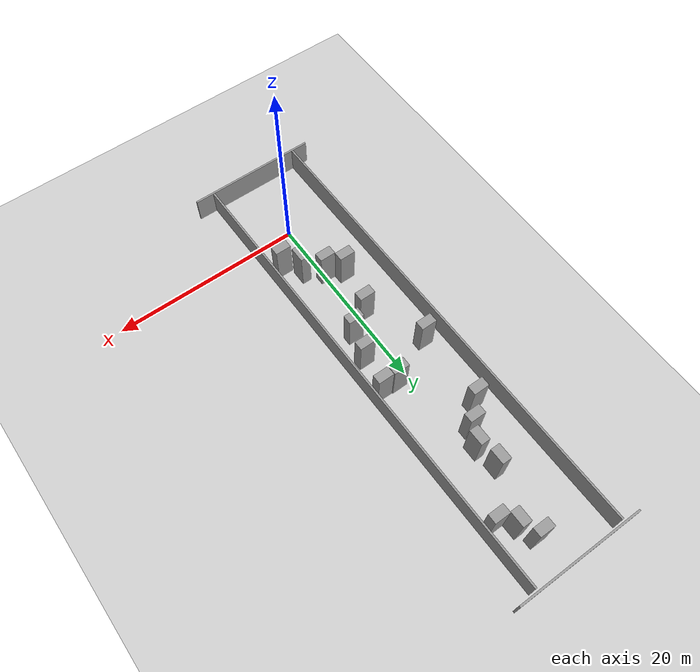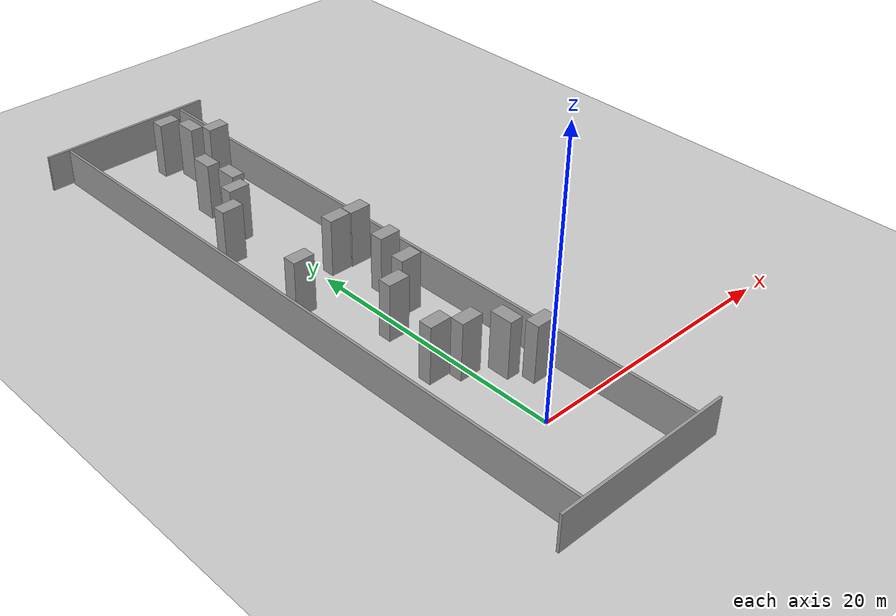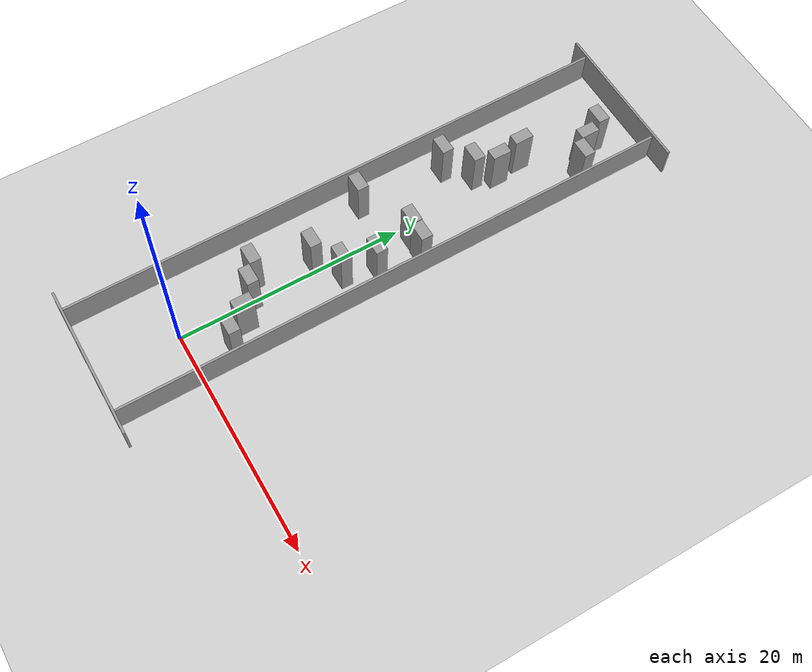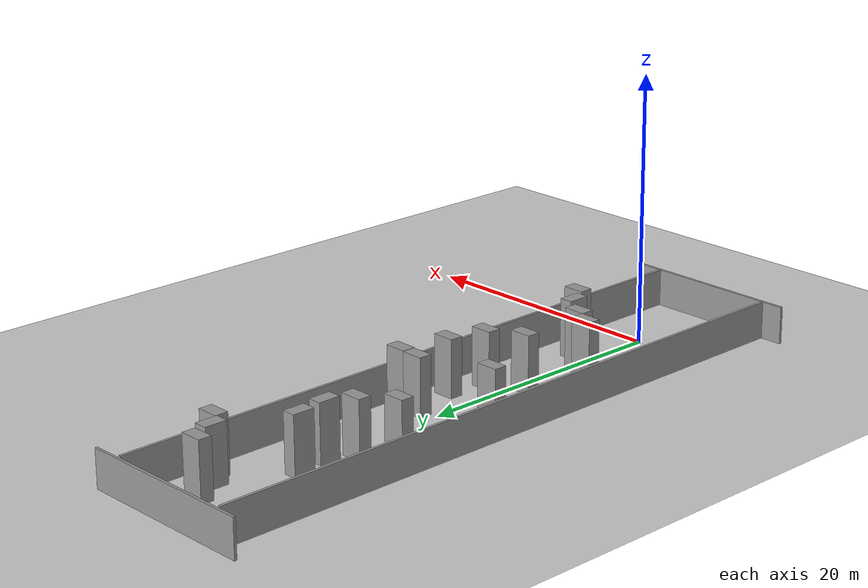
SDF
<sdf version="1.7">
 <world name="default">
  <light name="sun" type="directional">
   <pose>0 0 10 0 -0 0</pose>
   <diffuse>0.8 0.8 0.8 1</diffuse>
   <specular>0.2 0.2 0.2 1</specular>
   <attenuation>
    <range>1000</range>
    <constant>0.9</constant>
    <linear>0.01</linear>
    <quadratic>0.001</quadratic>
   </attenuation>
   <direction>-0.5 0.1 -0.9</direction>
   <spot><inner_angle>0</inner_angle><outer_angle>0</outer_angle><falloff>0</falloff></spot>
  </light>
  <model name="ground_plane">
   <static>1</static>
   <link name="link">
    <collision name="collision">
     <geometry><plane><normal>0 0 1</normal><size>100 100</size></plane></geometry>
     <surface><friction><ode><mu>100</mu><mu2>50</mu2></ode></friction></surface>
    </collision>
    <visual name="visual">
     <cast_shadows>0</cast_shadows>
     <geometry><plane><normal>0 0 1</normal><size>100 100</size></plane></geometry>
     <material>
      <script><uri>file://media/materials/scripts/gazebo.material</uri><name>Gazebo/Grey</name></script>
     </material>
    </visual>
   </link>
  </model>
  <gravity>0 0 -9.8</gravity>
  <magnetic_field>6e-06 2.3e-05 -4.2e-05</magnetic_field>
  <atmosphere type="adiabatic"/>
  <physics type="ode">
   <max_step_size>0.001</max_step_size>
   <real_time_factor>1</real_time_factor>
   <real_time_update_rate>1000</real_time_update_rate>
  </physics>
  <scene><ambient>0.4 0.4 0.4 1</ambient><background>0.7 0.7 0.7 1</background><shadows>1</shadows></scene>
  <audio><device>default</device></audio>
  <spherical_coordinates>
   <surface_model>EARTH_WGS84</surface_model>
   <latitude_deg>0</latitude_deg>
   <longitude_deg>0</longitude_deg>
   <elevation>0</elevation>
   <heading_deg>0</heading_deg>
  </spherical_coordinates>
  <model name="A_sajat_akadaly">
   <link name="link">
    <inertial>
     <mass>7.20795</mass>
     <inertia><ixx>12.896</ixx><ixy>0</ixy><ixz>0</ixz><iyy>11.827</iyy><iyz>0</iyz><izz>2.27029</izz></inertia>
    </inertial>
    <visual name="visual">
     <geometry><box><size>1 1.66723 4.32319</size></box></geometry>
     <material>
      <script><name>Gazebo/Grey</name><uri>file://media/materials/scripts/gazebo.material</uri></script>
      <shader type="pixel"><normal_map>__default__</normal_map></shader>
      <ambient>0.3 0.3 0.3 1</ambient>
      <diffuse>0.7 0.7 0.7 1</diffuse>
      <specular>0.01 0.01 0.01 1</specular>
      <emissive>0 0 0 1</emissive>
     </material>
    </visual>
    <collision name="collision">
     <geometry><box><size>1 1.66723 4.32319</size></box></geometry>
     <surface>
      <friction>
       <ode><mu>1</mu><mu2>1</mu2><fdir1>0 0 0</fdir1><slip1>0</slip1><slip2>0</slip2></ode>
       <torsional>
        <coefficient>1</coefficient>
        <patch_radius>0</patch_radius>
        <surface_radius>0</surface_radius>
        <use_patch_radius>1</use_patch_radius>
        <ode><slip>0</slip></ode>
       </torsional>
      </friction>
      <bounce><restitution_coefficient>0</restitution_coefficient><threshold>1e+06</threshold></bounce>
      <contact>
       <collide_without_contact>0</collide_without_contact>
       <collide_without_contact_bitmask>1</collide_without_contact_bitmask>
       <collide_bitmask>1</collide_bitmask>
       <ode>
        <soft_cfm>0</soft_cfm>
        <soft_erp>0.2</soft_erp>
        <kp>1e+13</kp>
        <kd>1</kd>
        <max_vel>0.01</max_vel>
        <min_depth>0</min_depth>
       </ode>
       <bullet>
        <split_impulse>1</split_impulse>
        <split_impulse_penetration_threshold>-0.01</split_impulse_penetration_threshold>
        <soft_cfm>0</soft_cfm>
        <soft_erp>0.2</soft_erp>
        <kp>1e+13</kp>
        <kd>1</kd>
       </bullet>
      </contact>
     </surface>
    </collision>
   </link>
   <static>0</static>
   <pose>-1.79115 7.65078 2.16159 0 -0 1.57</pose>
  </model>
  <model name="A_sajat_grey_wall_long">
   <link name="link">
    <pose>0 0 1.4 0 -0 0</pose>
    <inertial>
     <inertia><ixx>0</ixx><ixy>0</ixy><ixz>0</ixz><iyy>0</iyy><iyz>0</iyz><izz>0</izz></inertia>
     <mass>0</mass>
    </inertial>
    <visual name="visual">
     <cast_shadows>0</cast_shadows>
     <geometry><box><size>49.8516 0.2 2.8</size></box></geometry>
     <material>
      <script>
       <uri>model://grey_wall/materials/scripts</uri>
       <uri>model://grey_wall/materials/textures</uri>
       <name>vrc/grey_wall</name>
      </script>
      <shader type="pixel"/>
     </material>
    </visual>
    <collision name="collision">
     <geometry><box><size>49.8516 0.2 2.8</size></box></geometry>
     <surface>
      <friction>
       <ode><mu>1</mu><mu2>1</mu2><fdir1>0 0 0</fdir1><slip1>0</slip1><slip2>0</slip2></ode>
       <torsional>
        <coefficient>1</coefficient>
        <patch_radius>0</patch_radius>
        <surface_radius>0</surface_radius>
        <use_patch_radius>1</use_patch_radius>
        <ode><slip>0</slip></ode>
       </torsional>
      </friction>
      <bounce><restitution_coefficient>0</restitution_coefficient><threshold>1e+06</threshold></bounce>
      <contact>
       <collide_without_contact>0</collide_without_contact>
       <collide_without_contact_bitmask>1</collide_without_contact_bitmask>
       <collide_bitmask>1</collide_bitmask>
       <ode>
        <soft_cfm>0</soft_cfm>
        <soft_erp>0.2</soft_erp>
        <kp>1e+13</kp>
        <kd>1</kd>
        <max_vel>0.01</max_vel>
        <min_depth>0</min_depth>
       </ode>
       <bullet>
        <split_impulse>1</split_impulse>
        <split_impulse_penetration_threshold>-0.01</split_impulse_penetration_threshold>
        <soft_cfm>0</soft_cfm>
        <soft_erp>0.2</soft_erp>
        <kp>1e+13</kp>
        <kd>1</kd>
       </bullet>
      </contact>
     </surface>
    </collision>
   </link>
   <static>1</static>
   <pose>-5.62876 17.7777 0 0 0 -1.56286</pose>
  </model>
  <model name="A_sajat_grey_wall_long_clone">
   <link name="link">
    <pose>0 0 1.4 0 -0 0</pose>
    <inertial>
     <inertia><ixx>0</ixx><ixy>0</ixy><ixz>0</ixz><iyy>0</iyy><iyz>0</iyz><izz>0</izz></inertia>
     <mass>0</mass>
    </inertial>
    <visual name="visual">
     <cast_shadows>0</cast_shadows>
     <geometry><box><size>49.8516 0.2 2.8</size></box></geometry>
     <material>
      <script>
       <uri>model://grey_wall/materials/scripts</uri>
       <uri>model://grey_wall/materials/textures</uri>
       <name>vrc/grey_wall</name>
      </script>
      <shader type="pixel"/>
     </material>
    </visual>
    <collision name="collision">
     <geometry><box><size>49.8516 0.2 2.8</size></box></geometry>
     <surface>
      <friction>
       <ode><mu>1</mu><mu2>1</mu2><fdir1>0 0 0</fdir1><slip1>0</slip1><slip2>0</slip2></ode>
       <torsional>
        <coefficient>1</coefficient>
        <patch_radius>0</patch_radius>
        <surface_radius>0</surface_radius>
        <use_patch_radius>1</use_patch_radius>
        <ode><slip>0</slip></ode>
       </torsional>
      </friction>
      <bounce><restitution_coefficient>0</restitution_coefficient><threshold>1e+06</threshold></bounce>
      <contact>
       <collide_without_contact>0</collide_without_contact>
       <collide_without_contact_bitmask>1</collide_without_contact_bitmask>
       <collide_bitmask>1</collide_bitmask>
       <ode>
        <soft_cfm>0</soft_cfm>
        <soft_erp>0.2</soft_erp>
        <kp>1e+13</kp>
        <kd>1</kd>
        <max_vel>0.01</max_vel>
        <min_depth>0</min_depth>
       </ode>
       <bullet>
        <split_impulse>1</split_impulse>
        <split_impulse_penetration_threshold>-0.01</split_impulse_penetration_threshold>
        <soft_cfm>0</soft_cfm>
        <soft_erp>0.2</soft_erp>
        <kp>1e+13</kp>
        <kd>1</kd>
       </bullet>
      </contact>
     </surface>
    </collision>
   </link>
   <static>1</static>
   <pose>4.25641 17.7602 0 0 0 -1.56286</pose>
  </model>
  <model name="A_sajat_grey_wall">
   <link name="link">
    <pose>0 0 1.4 0 -0 0</pose>
    <inertial>
     <inertia><ixx>0</ixx><ixy>0</ixy><ixz>0</ixz><iyy>0</iyy><iyz>0</iyz><izz>0</izz></inertia>
     <mass>0</mass>
    </inertial>
    <visual name="visual">
     <cast_shadows>0</cast_shadows>
     <geometry><box><size>13.6967 0.2 2.8</size></box></geometry>
     <material>
      <script>
       <uri>model://grey_wall/materials/scripts</uri>
       <uri>model://grey_wall/materials/textures</uri>
       <name>vrc/grey_wall</name>
      </script>
      <shader type="pixel"/>
     </material>
    </visual>
    <collision name="collision">
     <geometry><box><size>13.6967 0.2 2.8</size></box></geometry>
     <surface>
      <friction>
       <ode><mu>1</mu><mu2>1</mu2><fdir1>0 0 0</fdir1><slip1>0</slip1><slip2>0</slip2></ode>
       <torsional>
        <coefficient>1</coefficient>
        <patch_radius>0</patch_radius>
        <surface_radius>0</surface_radius>
        <use_patch_radius>1</use_patch_radius>
        <ode><slip>0</slip></ode>
       </torsional>
      </friction>
      <bounce><restitution_coefficient>0</restitution_coefficient><threshold>1e+06</threshold></bounce>
      <contact>
       <collide_without_contact>0</collide_without_contact>
       <collide_without_contact_bitmask>1</collide_without_contact_bitmask>
       <collide_bitmask>1</collide_bitmask>
       <ode>
        <soft_cfm>0</soft_cfm>
        <soft_erp>0.2</soft_erp>
        <kp>1e+13</kp>
        <kd>1</kd>
        <max_vel>0.01</max_vel>
        <min_depth>0</min_depth>
       </ode>
       <bullet>
        <split_impulse>1</split_impulse>
        <split_impulse_penetration_threshold>-0.01</split_impulse_penetration_threshold>
        <soft_cfm>0</soft_cfm>
        <soft_erp>0.2</soft_erp>
        <kp>1e+13</kp>
        <kd>1</kd>
       </bullet>
      </contact>
     </surface>
    </collision>
   </link>
   <static>1</static>
   <pose>-0.342591 -7.24357 0 0 -0 0</pose>
  </model>
  <model name="A_sajat_akadaly_clone">
   <link name="link">
    <inertial>
     <mass>7.20795</mass>
     <inertia><ixx>12.896</ixx><ixy>0</ixy><ixz>0</ixz><iyy>11.827</iyy><iyz>0</iyz><izz>2.27029</izz></inertia>
    </inertial>
    <visual name="visual">
     <geometry><box><size>1 1.66723 4.32319</size></box></geometry>
     <material>
      <script><name>Gazebo/Grey</name><uri>file://media/materials/scripts/gazebo.material</uri></script>
      <shader type="pixel"><normal_map>__default__</normal_map></shader>
      <ambient>0.3 0.3 0.3 1</ambient>
      <diffuse>0.7 0.7 0.7 1</diffuse>
      <specular>0.01 0.01 0.01 1</specular>
      <emissive>0 0 0 1</emissive>
     </material>
    </visual>
    <collision name="collision">
     <geometry><box><size>1 1.66723 4.32319</size></box></geometry>
     <surface>
      <friction>
       <ode><mu>1</mu><mu2>1</mu2><fdir1>0 0 0</fdir1><slip1>0</slip1><slip2>0</slip2></ode>
       <torsional>
        <coefficient>1</coefficient>
        <patch_radius>0</patch_radius>
        <surface_radius>0</surface_radius>
        <use_patch_radius>1</use_patch_radius>
        <ode><slip>0</slip></ode>
       </torsional>
      </friction>
      <bounce><restitution_coefficient>0</restitution_coefficient><threshold>1e+06</threshold></bounce>
      <contact>
       <collide_without_contact>0</collide_without_contact>
       <collide_without_contact_bitmask>1</collide_without_contact_bitmask>
       <collide_bitmask>1</collide_bitmask>
       <ode>
        <soft_cfm>0</soft_cfm>
        <soft_erp>0.2</soft_erp>
        <kp>1e+13</kp>
        <kd>1</kd>
        <max_vel>0.01</max_vel>
        <min_depth>0</min_depth>
       </ode>
       <bullet>
        <split_impulse>1</split_impulse>
        <split_impulse_penetration_threshold>-0.01</split_impulse_penetration_threshold>
        <soft_cfm>0</soft_cfm>
        <soft_erp>0.2</soft_erp>
        <kp>1e+13</kp>
        <kd>1</kd>
       </bullet>
      </contact>
     </surface>
    </collision>
   </link>
   <static>0</static>
   <pose>1.72775 5.12744 2.1616 -1e-06 0 -0.00025</pose>
  </model>
  <model name="A_sajat_akadaly_clone_0">
   <link name="link">
    <inertial>
     <mass>7.20795</mass>
     <inertia><ixx>12.896</ixx><ixy>0</ixy><ixz>0</ixz><iyy>11.827</iyy><iyz>0</iyz><izz>2.27029</izz></inertia>
    </inertial>
    <visual name="visual">
     <geometry><box><size>1 1.66723 4.32319</size></box></geometry>
     <material>
      <script><name>Gazebo/Grey</name><uri>file://media/materials/scripts/gazebo.material</uri></script>
      <shader type="pixel"><normal_map>__default__</normal_map></shader>
      <ambient>0.3 0.3 0.3 1</ambient>
      <diffuse>0.7 0.7 0.7 1</diffuse>
      <specular>0.01 0.01 0.01 1</specular>
      <emissive>0 0 0 1</emissive>
     </material>
    </visual>
    <collision name="collision">
     <geometry><box><size>1 1.66723 4.32319</size></box></geometry>
     <surface>
      <friction>
       <ode><mu>1</mu><mu2>1</mu2><fdir1>0 0 0</fdir1><slip1>0</slip1><slip2>0</slip2></ode>
       <torsional>
        <coefficient>1</coefficient>
        <patch_radius>0</patch_radius>
        <surface_radius>0</surface_radius>
        <use_patch_radius>1</use_patch_radius>
        <ode><slip>0</slip></ode>
       </torsional>
      </friction>
      <bounce><restitution_coefficient>0</restitution_coefficient><threshold>1e+06</threshold></bounce>
      <contact>
       <collide_without_contact>0</collide_without_contact>
       <collide_without_contact_bitmask>1</collide_without_contact_bitmask>
       <collide_bitmask>1</collide_bitmask>
       <ode>
        <soft_cfm>0</soft_cfm>
        <soft_erp>0.2</soft_erp>
        <kp>1e+13</kp>
        <kd>1</kd>
        <max_vel>0.01</max_vel>
        <min_depth>0</min_depth>
       </ode>
       <bullet>
        <split_impulse>1</split_impulse>
        <split_impulse_penetration_threshold>-0.01</split_impulse_penetration_threshold>
        <soft_cfm>0</soft_cfm>
        <soft_erp>0.2</soft_erp>
        <kp>1e+13</kp>
        <kd>1</kd>
       </bullet>
      </contact>
     </surface>
    </collision>
   </link>
   <static>0</static>
   <pose>-0.691105 12.483 2.16159 0 -0 1.57</pose>
  </model>
  <model name="A_sajat_akadaly_clone_1">
   <link name="link">
    <inertial>
     <mass>7.20795</mass>
     <inertia><ixx>12.896</ixx><ixy>0</ixy><ixz>0</ixz><iyy>11.827</iyy><iyz>0</iyz><izz>2.27029</izz></inertia>
    </inertial>
    <visual name="visual">
     <geometry><box><size>1 1.66723 4.32319</size></box></geometry>
     <material>
      <script><name>Gazebo/Grey</name><uri>file://media/materials/scripts/gazebo.material</uri></script>
      <shader type="pixel"><normal_map>__default__</normal_map></shader>
      <ambient>0.3 0.3 0.3 1</ambient>
      <diffuse>0.7 0.7 0.7 1</diffuse>
      <specular>0.01 0.01 0.01 1</specular>
      <emissive>0 0 0 1</emissive>
     </material>
    </visual>
    <collision name="collision">
     <geometry><box><size>1 1.66723 4.32319</size></box></geometry>
     <surface>
      <friction>
       <ode><mu>1</mu><mu2>1</mu2><fdir1>0 0 0</fdir1><slip1>0</slip1><slip2>0</slip2></ode>
       <torsional>
        <coefficient>1</coefficient>
        <patch_radius>0</patch_radius>
        <surface_radius>0</surface_radius>
        <use_patch_radius>1</use_patch_radius>
        <ode><slip>0</slip></ode>
       </torsional>
      </friction>
      <bounce><restitution_coefficient>0</restitution_coefficient><threshold>1e+06</threshold></bounce>
      <contact>
       <collide_without_contact>0</collide_without_contact>
       <collide_without_contact_bitmask>1</collide_without_contact_bitmask>
       <collide_bitmask>1</collide_bitmask>
       <ode>
        <soft_cfm>0</soft_cfm>
        <soft_erp>0.2</soft_erp>
        <kp>1e+13</kp>
        <kd>1</kd>
        <max_vel>0.01</max_vel>
        <min_depth>0</min_depth>
       </ode>
       <bullet>
        <split_impulse>1</split_impulse>
        <split_impulse_penetration_threshold>-0.01</split_impulse_penetration_threshold>
        <soft_cfm>0</soft_cfm>
        <soft_erp>0.2</soft_erp>
        <kp>1e+13</kp>
        <kd>1</kd>
       </bullet>
      </contact>
     </surface>
    </collision>
   </link>
   <static>0</static>
   <pose>2.42408 16.7386 2.16159 0 -0 1.57</pose>
  </model>
  <model name="A_sajat_akadaly_clone_2">
   <link name="link">
    <inertial>
     <mass>7.20795</mass>
     <inertia><ixx>12.896</ixx><ixy>0</ixy><ixz>0</ixz><iyy>11.827</iyy><iyz>0</iyz><izz>2.27029</izz></inertia>
    </inertial>
    <visual name="visual">
     <geometry><box><size>1 1.66723 4.32319</size></box></geometry>
     <material>
      <script><name>Gazebo/Grey</name><uri>file://media/materials/scripts/gazebo.material</uri></script>
      <shader type="pixel"><normal_map>__default__</normal_map></shader>
      <ambient>0.3 0.3 0.3 1</ambient>
      <diffuse>0.7 0.7 0.7 1</diffuse>
      <specular>0.01 0.01 0.01 1</specular>
      <emissive>0 0 0 1</emissive>
     </material>
    </visual>
    <collision name="collision">
     <geometry><box><size>1 1.66723 4.32319</size></box></geometry>
     <surface>
      <friction>
       <ode><mu>1</mu><mu2>1</mu2><fdir1>0 0 0</fdir1><slip1>0</slip1><slip2>0</slip2></ode>
       <torsional>
        <coefficient>1</coefficient>
        <patch_radius>0</patch_radius>
        <surface_radius>0</surface_radius>
        <use_patch_radius>1</use_patch_radius>
        <ode><slip>0</slip></ode>
       </torsional>
      </friction>
      <bounce><restitution_coefficient>0</restitution_coefficient><threshold>1e+06</threshold></bounce>
      <contact>
       <collide_without_contact>0</collide_without_contact>
       <collide_without_contact_bitmask>1</collide_without_contact_bitmask>
       <collide_bitmask>1</collide_bitmask>
       <ode>
        <soft_cfm>0</soft_cfm>
        <soft_erp>0.2</soft_erp>
        <kp>1e+13</kp>
        <kd>1</kd>
        <max_vel>0.01</max_vel>
        <min_depth>0</min_depth>
       </ode>
       <bullet>
        <split_impulse>1</split_impulse>
        <split_impulse_penetration_threshold>-0.01</split_impulse_penetration_threshold>
        <soft_cfm>0</soft_cfm>
        <soft_erp>0.2</soft_erp>
        <kp>1e+13</kp>
        <kd>1</kd>
       </bullet>
      </contact>
     </surface>
    </collision>
   </link>
   <static>0</static>
   <pose>-3.50615 18.3969 2.16159 0 -0 1.57</pose>
  </model>
  <model name="A_sajat_akadaly_clone_3">
   <link name="link">
    <inertial>
     <mass>7.20795</mass>
     <inertia><ixx>12.896</ixx><ixy>0</ixy><ixz>0</ixz><iyy>11.827</iyy><iyz>0</iyz><izz>2.27029</izz></inertia>
    </inertial>
    <visual name="visual">
     <geometry><box><size>1 1.66723 4.32319</size></box></geometry>
     <material>
      <script><name>Gazebo/Grey</name><uri>file://media/materials/scripts/gazebo.material</uri></script>
      <shader type="pixel"><normal_map>__default__</normal_map></shader>
      <ambient>0.3 0.3 0.3 1</ambient>
      <diffuse>0.7 0.7 0.7 1</diffuse>
      <specular>0.01 0.01 0.01 1</specular>
      <emissive>0 0 0 1</emissive>
     </material>
    </visual>
    <collision name="collision">
     <geometry><box><size>1 1.66723 4.32319</size></box></geometry>
     <surface>
      <friction>
       <ode><mu>1</mu><mu2>1</mu2><fdir1>0 0 0</fdir1><slip1>0</slip1><slip2>0</slip2></ode>
       <torsional>
        <coefficient>1</coefficient>
        <patch_radius>0</patch_radius>
        <surface_radius>0</surface_radius>
        <use_patch_radius>1</use_patch_radius>
        <ode><slip>0</slip></ode>
       </torsional>
      </friction>
      <bounce><restitution_coefficient>0</restitution_coefficient><threshold>1e+06</threshold></bounce>
      <contact>
       <collide_without_contact>0</collide_without_contact>
       <collide_without_contact_bitmask>1</collide_without_contact_bitmask>
       <collide_bitmask>1</collide_bitmask>
       <ode>
        <soft_cfm>0</soft_cfm>
        <soft_erp>0.2</soft_erp>
        <kp>1e+13</kp>
        <kd>1</kd>
        <max_vel>0.01</max_vel>
        <min_depth>0</min_depth>
       </ode>
       <bullet>
        <split_impulse>1</split_impulse>
        <split_impulse_penetration_threshold>-0.01</split_impulse_penetration_threshold>
        <soft_cfm>0</soft_cfm>
        <soft_erp>0.2</soft_erp>
        <kp>1e+13</kp>
        <kd>1</kd>
       </bullet>
      </contact>
     </surface>
    </collision>
   </link>
   <static>0</static>
   <pose>3.09581 20.4869 2.16159 0 -0 1.57</pose>
  </model>
  <model name="A_sajat_akadaly_clone_4">
   <link name="link">
    <inertial>
     <mass>7.20795</mass>
     <inertia><ixx>12.896</ixx><ixy>0</ixy><ixz>0</ixz><iyy>11.827</iyy><iyz>0</iyz><izz>2.27029</izz></inertia>
    </inertial>
    <visual name="visual">
     <geometry><box><size>1 1.66723 4.32319</size></box></geometry>
     <material>
      <script><name>Gazebo/Grey</name><uri>file://media/materials/scripts/gazebo.material</uri></script>
      <shader type="pixel"><normal_map>__default__</normal_map></shader>
      <ambient>0.3 0.3 0.3 1</ambient>
      <diffuse>0.7 0.7 0.7 1</diffuse>
      <specular>0.01 0.01 0.01 1</specular>
      <emissive>0 0 0 1</emissive>
     </material>
    </visual>
    <collision name="collision">
     <geometry><box><size>1 1.66723 4.32319</size></box></geometry>
     <surface>
      <friction>
       <ode><mu>1</mu><mu2>1</mu2><fdir1>0 0 0</fdir1><slip1>0</slip1><slip2>0</slip2></ode>
       <torsional>
        <coefficient>1</coefficient>
        <patch_radius>0</patch_radius>
        <surface_radius>0</surface_radius>
        <use_patch_radius>1</use_patch_radius>
        <ode><slip>0</slip></ode>
       </torsional>
      </friction>
      <bounce><restitution_coefficient>0</restitution_coefficient><threshold>1e+06</threshold></bounce>
      <contact>
       <collide_without_contact>0</collide_without_contact>
       <collide_without_contact_bitmask>1</collide_without_contact_bitmask>
       <collide_bitmask>1</collide_bitmask>
       <ode>
        <soft_cfm>0</soft_cfm>
        <soft_erp>0.2</soft_erp>
        <kp>1e+13</kp>
        <kd>1</kd>
        <max_vel>0.01</max_vel>
        <min_depth>0</min_depth>
       </ode>
       <bullet>
        <split_impulse>1</split_impulse>
        <split_impulse_penetration_threshold>-0.01</split_impulse_penetration_threshold>
        <soft_cfm>0</soft_cfm>
        <soft_erp>0.2</soft_erp>
        <kp>1e+13</kp>
        <kd>1</kd>
       </bullet>
      </contact>
     </surface>
    </collision>
   </link>
   <static>0</static>
   <pose>-3.21723 26.3393 2.16159 0 -0 1.57</pose>
  </model>
  <model name="A_sajat_akadaly_clone_3_clone">
   <link name="link">
    <inertial>
     <mass>7.20795</mass>
     <inertia><ixx>12.896</ixx><ixy>0</ixy><ixz>0</ixz><iyy>11.827</iyy><iyz>0</iyz><izz>2.27029</izz></inertia>
    </inertial>
    <visual name="visual">
     <geometry><box><size>1 1.66723 4.32319</size></box></geometry>
     <material>
      <script><name>Gazebo/Grey</name><uri>file://media/materials/scripts/gazebo.material</uri></script>
      <shader type="pixel"><normal_map>__default__</normal_map></shader>
      <ambient>0.3 0.3 0.3 1</ambient>
      <diffuse>0.7 0.7 0.7 1</diffuse>
      <specular>0.01 0.01 0.01 1</specular>
      <emissive>0 0 0 1</emissive>
     </material>
    </visual>
    <collision name="collision">
     <geometry><box><size>1 1.66723 4.32319</size></box></geometry>
     <surface>
      <friction>
       <ode><mu>1</mu><mu2>1</mu2><fdir1>0 0 0</fdir1><slip1>0</slip1><slip2>0</slip2></ode>
       <torsional>
        <coefficient>1</coefficient>
        <patch_radius>0</patch_radius>
        <surface_radius>0</surface_radius>
        <use_patch_radius>1</use_patch_radius>
        <ode><slip>0</slip></ode>
       </torsional>
      </friction>
      <bounce><restitution_coefficient>0</restitution_coefficient><threshold>1e+06</threshold></bounce>
      <contact>
       <collide_without_contact>0</collide_without_contact>
       <collide_without_contact_bitmask>1</collide_without_contact_bitmask>
       <collide_bitmask>1</collide_bitmask>
       <ode>
        <soft_cfm>0</soft_cfm>
        <soft_erp>0.2</soft_erp>
        <kp>1e+13</kp>
        <kd>1</kd>
        <max_vel>0.01</max_vel>
        <min_depth>0</min_depth>
       </ode>
       <bullet>
        <split_impulse>1</split_impulse>
        <split_impulse_penetration_threshold>-0.01</split_impulse_penetration_threshold>
        <soft_cfm>0</soft_cfm>
        <soft_erp>0.2</soft_erp>
        <kp>1e+13</kp>
        <kd>1</kd>
       </bullet>
      </contact>
     </surface>
    </collision>
   </link>
   <static>0</static>
   <pose>1.38754 20.5635 2.16159 0 -0 1.57</pose>
  </model>
  <model name="A_sajat_akadaly_clone_3_clone_0">
   <link name="link">
    <inertial>
     <mass>7.20795</mass>
     <inertia><ixx>12.896</ixx><ixy>0</ixy><ixz>0</ixz><iyy>11.827</iyy><iyz>0</iyz><izz>2.27029</izz></inertia>
    </inertial>
    <visual name="visual">
     <geometry><box><size>1 1.66723 4.32319</size></box></geometry>
     <material>
      <script><name>Gazebo/Grey</name><uri>file://media/materials/scripts/gazebo.material</uri></script>
      <shader type="pixel"><normal_map>__default__</normal_map></shader>
      <ambient>0.3 0.3 0.3 1</ambient>
      <diffuse>0.7 0.7 0.7 1</diffuse>
      <specular>0.01 0.01 0.01 1</specular>
      <emissive>0 0 0 1</emissive>
     </material>
    </visual>
    <collision name="collision">
     <geometry><box><size>1 1.66723 4.32319</size></box></geometry>
     <surface>
      <friction>
       <ode><mu>1</mu><mu2>1</mu2><fdir1>0 0 0</fdir1><slip1>0</slip1><slip2>0</slip2></ode>
       <torsional>
        <coefficient>1</coefficient>
        <patch_radius>0</patch_radius>
        <surface_radius>0</surface_radius>
        <use_patch_radius>1</use_patch_radius>
        <ode><slip>0</slip></ode>
       </torsional>
      </friction>
      <bounce><restitution_coefficient>0</restitution_coefficient><threshold>1e+06</threshold></bounce>
      <contact>
       <collide_without_contact>0</collide_without_contact>
       <collide_without_contact_bitmask>1</collide_without_contact_bitmask>
       <collide_bitmask>1</collide_bitmask>
       <ode>
        <soft_cfm>0</soft_cfm>
        <soft_erp>0.2</soft_erp>
        <kp>1e+13</kp>
        <kd>1</kd>
        <max_vel>0.01</max_vel>
        <min_depth>0</min_depth>
       </ode>
       <bullet>
        <split_impulse>1</split_impulse>
        <split_impulse_penetration_threshold>-0.01</split_impulse_penetration_threshold>
        <soft_cfm>0</soft_cfm>
        <soft_erp>0.2</soft_erp>
        <kp>1e+13</kp>
        <kd>1</kd>
       </bullet>
      </contact>
     </surface>
    </collision>
   </link>
   <static>0</static>
   <pose>1.66851 13.9213 2.16159 0 -0 1.57</pose>
  </model>
  <model name="A_sajat_akadaly_clone_3_clone_1">
   <link name="link">
    <inertial>
     <mass>7.20795</mass>
     <inertia><ixx>12.896</ixx><ixy>0</ixy><ixz>0</ixz><iyy>11.827</iyy><iyz>0</iyz><izz>2.27029</izz></inertia>
    </inertial>
    <visual name="visual">
     <geometry><box><size>1 1.66723 4.32319</size></box></geometry>
     <material>
      <script><name>Gazebo/Grey</name><uri>file://media/materials/scripts/gazebo.material</uri></script>
      <shader type="pixel"><normal_map>__default__</normal_map></shader>
      <ambient>0.3 0.3 0.3 1</ambient>
      <diffuse>0.7 0.7 0.7 1</diffuse>
      <specular>0.01 0.01 0.01 1</specular>
      <emissive>0 0 0 1</emissive>
     </material>
    </visual>
    <collision name="collision">
     <geometry><box><size>1 1.66723 4.32319</size></box></geometry>
     <surface>
      <friction>
       <ode><mu>1</mu><mu2>1</mu2><fdir1>0 0 0</fdir1><slip1>0</slip1><slip2>0</slip2></ode>
       <torsional>
        <coefficient>1</coefficient>
        <patch_radius>0</patch_radius>
        <surface_radius>0</surface_radius>
        <use_patch_radius>1</use_patch_radius>
        <ode><slip>0</slip></ode>
       </torsional>
      </friction>
      <bounce><restitution_coefficient>0</restitution_coefficient><threshold>1e+06</threshold></bounce>
      <contact>
       <collide_without_contact>0</collide_without_contact>
       <collide_without_contact_bitmask>1</collide_without_contact_bitmask>
       <collide_bitmask>1</collide_bitmask>
       <ode>
        <soft_cfm>0</soft_cfm>
        <soft_erp>0.2</soft_erp>
        <kp>1e+13</kp>
        <kd>1</kd>
        <max_vel>0.01</max_vel>
        <min_depth>0</min_depth>
       </ode>
       <bullet>
        <split_impulse>1</split_impulse>
        <split_impulse_penetration_threshold>-0.01</split_impulse_penetration_threshold>
        <soft_cfm>0</soft_cfm>
        <soft_erp>0.2</soft_erp>
        <kp>1e+13</kp>
        <kd>1</kd>
       </bullet>
      </contact>
     </surface>
    </collision>
   </link>
   <static>0</static>
   <pose>-1.25816 28.2051 2.16159 0 -0 1.57</pose>
  </model>
  <model name="A_sajat_akadaly_clone_clone">
   <link name="link">
    <inertial>
     <mass>7.20795</mass>
     <inertia><ixx>12.896</ixx><ixy>0</ixy><ixz>0</ixz><iyy>11.827</iyy><iyz>0</iyz><izz>2.27029</izz></inertia>
    </inertial>
    <visual name="visual">
     <geometry><box><size>1 1.66723 4.32319</size></box></geometry>
     <material>
      <script><name>Gazebo/Grey</name><uri>file://media/materials/scripts/gazebo.material</uri></script>
      <shader type="pixel"><normal_map>__default__</normal_map></shader>
      <ambient>0.3 0.3 0.3 1</ambient>
      <diffuse>0.7 0.7 0.7 1</diffuse>
      <specular>0.01 0.01 0.01 1</specular>
      <emissive>0 0 0 1</emissive>
     </material>
    </visual>
    <collision name="collision">
     <geometry><box><size>1 1.66723 4.32319</size></box></geometry>
     <surface>
      <friction>
       <ode><mu>1</mu><mu2>1</mu2><fdir1>0 0 0</fdir1><slip1>0</slip1><slip2>0</slip2></ode>
       <torsional>
        <coefficient>1</coefficient>
        <patch_radius>0</patch_radius>
        <surface_radius>0</surface_radius>
        <use_patch_radius>1</use_patch_radius>
        <ode><slip>0</slip></ode>
       </torsional>
      </friction>
      <bounce><restitution_coefficient>0</restitution_coefficient><threshold>1e+06</threshold></bounce>
      <contact>
       <collide_without_contact>0</collide_without_contact>
       <collide_without_contact_bitmask>1</collide_without_contact_bitmask>
       <collide_bitmask>1</collide_bitmask>
       <ode>
        <soft_cfm>0</soft_cfm>
        <soft_erp>0.2</soft_erp>
        <kp>1e+13</kp>
        <kd>1</kd>
        <max_vel>0.01</max_vel>
        <min_depth>0</min_depth>
       </ode>
       <bullet>
        <split_impulse>1</split_impulse>
        <split_impulse_penetration_threshold>-0.01</split_impulse_penetration_threshold>
        <soft_cfm>0</soft_cfm>
        <soft_erp>0.2</soft_erp>
        <kp>1e+13</kp>
        <kd>1</kd>
       </bullet>
      </contact>
     </surface>
    </collision>
   </link>
   <static>0</static>
   <pose>-0.275287 30.0092 2.1616 -1e-06 0 -0.00025</pose>
  </model>
  <model name="A_sajat_akadaly_clone_clone_clone">
   <link name="link">
    <inertial>
     <mass>7.20795</mass>
     <inertia><ixx>12.896</ixx><ixy>0</ixy><ixz>0</ixz><iyy>11.827</iyy><iyz>0</iyz><izz>2.27029</izz></inertia>
    </inertial>
    <visual name="visual">
     <geometry><box><size>1 1.66723 4.32319</size></box></geometry>
     <material>
      <script><name>Gazebo/Grey</name><uri>file://media/materials/scripts/gazebo.material</uri></script>
      <shader type="pixel"><normal_map>__default__</normal_map></shader>
      <ambient>0.3 0.3 0.3 1</ambient>
      <diffuse>0.7 0.7 0.7 1</diffuse>
      <specular>0.01 0.01 0.01 1</specular>
      <emissive>0 0 0 1</emissive>
     </material>
    </visual>
    <collision name="collision">
     <geometry><box><size>1 1.66723 4.32319</size></box></geometry>
     <surface>
      <friction>
       <ode><mu>1</mu><mu2>1</mu2><fdir1>0 0 0</fdir1><slip1>0</slip1><slip2>0</slip2></ode>
       <torsional>
        <coefficient>1</coefficient>
        <patch_radius>0</patch_radius>
        <surface_radius>0</surface_radius>
        <use_patch_radius>1</use_patch_radius>
        <ode><slip>0</slip></ode>
       </torsional>
      </friction>
      <bounce><restitution_coefficient>0</restitution_coefficient><threshold>1e+06</threshold></bounce>
      <contact>
       <collide_without_contact>0</collide_without_contact>
       <collide_without_contact_bitmask>1</collide_without_contact_bitmask>
       <collide_bitmask>1</collide_bitmask>
       <ode>
        <soft_cfm>0</soft_cfm>
        <soft_erp>0.2</soft_erp>
        <kp>1e+13</kp>
        <kd>1</kd>
        <max_vel>0.01</max_vel>
        <min_depth>0</min_depth>
       </ode>
       <bullet>
        <split_impulse>1</split_impulse>
        <split_impulse_penetration_threshold>-0.01</split_impulse_penetration_threshold>
        <soft_cfm>0</soft_cfm>
        <soft_erp>0.2</soft_erp>
        <kp>1e+13</kp>
        <kd>1</kd>
       </bullet>
      </contact>
     </surface>
    </collision>
   </link>
   <static>0</static>
   <pose>-0.654434 32.4181 2.1616 -1e-06 0 -0.00025</pose>
  </model>
  <model name="A_sajat_akadaly_clone_clone_clone_0">
   <link name="link">
    <inertial>
     <mass>7.20795</mass>
     <inertia><ixx>12.896</ixx><ixy>0</ixy><ixz>0</ixz><iyy>11.827</iyy><iyz>0</iyz><izz>2.27029</izz></inertia>
    </inertial>
    <visual name="visual">
     <geometry><box><size>1 1.66723 4.32319</size></box></geometry>
     <material>
      <script><name>Gazebo/Grey</name><uri>file://media/materials/scripts/gazebo.material</uri></script>
      <shader type="pixel"><normal_map>__default__</normal_map></shader>
      <ambient>0.3 0.3 0.3 1</ambient>
      <diffuse>0.7 0.7 0.7 1</diffuse>
      <specular>0.01 0.01 0.01 1</specular>
      <emissive>0 0 0 1</emissive>
     </material>
    </visual>
    <collision name="collision">
     <geometry><box><size>1 1.66723 4.32319</size></box></geometry>
     <surface>
      <friction>
       <ode><mu>1</mu><mu2>1</mu2><fdir1>0 0 0</fdir1><slip1>0</slip1><slip2>0</slip2></ode>
       <torsional>
        <coefficient>1</coefficient>
        <patch_radius>0</patch_radius>
        <surface_radius>0</surface_radius>
        <use_patch_radius>1</use_patch_radius>
        <ode><slip>0</slip></ode>
       </torsional>
      </friction>
      <bounce><restitution_coefficient>0</restitution_coefficient><threshold>1e+06</threshold></bounce>
      <contact>
       <collide_without_contact>0</collide_without_contact>
       <collide_without_contact_bitmask>1</collide_without_contact_bitmask>
       <collide_bitmask>1</collide_bitmask>
       <ode>
        <soft_cfm>0</soft_cfm>
        <soft_erp>0.2</soft_erp>
        <kp>1e+13</kp>
        <kd>1</kd>
        <max_vel>0.01</max_vel>
        <min_depth>0</min_depth>
       </ode>
       <bullet>
        <split_impulse>1</split_impulse>
        <split_impulse_penetration_threshold>-0.01</split_impulse_penetration_threshold>
        <soft_cfm>0</soft_cfm>
        <soft_erp>0.2</soft_erp>
        <kp>1e+13</kp>
        <kd>1</kd>
       </bullet>
      </contact>
     </surface>
    </collision>
   </link>
   <static>0</static>
   <pose>1.56304 37.5603 2.1616 -1e-06 0 -0.00025</pose>
  </model>
  <model name="A_sajat_akadaly_clone_2_clone">
   <link name="link">
    <inertial>
     <mass>7.20795</mass>
     <inertia><ixx>12.896</ixx><ixy>0</ixy><ixz>0</ixz><iyy>11.827</iyy><iyz>0</iyz><izz>2.27029</izz></inertia>
    </inertial>
    <visual name="visual">
     <geometry><box><size>1 1.66723 4.32319</size></box></geometry>
     <material>
      <script><name>Gazebo/Grey</name><uri>file://media/materials/scripts/gazebo.material</uri></script>
      <shader type="pixel"><normal_map>__default__</normal_map></shader>
      <ambient>0.3 0.3 0.3 1</ambient>
      <diffuse>0.7 0.7 0.7 1</diffuse>
      <specular>0.01 0.01 0.01 1</specular>
      <emissive>0 0 0 1</emissive>
     </material>
    </visual>
    <collision name="collision">
     <geometry><box><size>1 1.66723 4.32319</size></box></geometry>
     <surface>
      <friction>
       <ode><mu>1</mu><mu2>1</mu2><fdir1>0 0 0</fdir1><slip1>0</slip1><slip2>0</slip2></ode>
       <torsional>
        <coefficient>1</coefficient>
        <patch_radius>0</patch_radius>
        <surface_radius>0</surface_radius>
        <use_patch_radius>1</use_patch_radius>
        <ode><slip>0</slip></ode>
       </torsional>
      </friction>
      <bounce><restitution_coefficient>0</restitution_coefficient><threshold>1e+06</threshold></bounce>
      <contact>
       <collide_without_contact>0</collide_without_contact>
       <collide_without_contact_bitmask>1</collide_without_contact_bitmask>
       <collide_bitmask>1</collide_bitmask>
       <ode>
        <soft_cfm>0</soft_cfm>
        <soft_erp>0.2</soft_erp>
        <kp>1e+13</kp>
        <kd>1</kd>
        <max_vel>0.01</max_vel>
        <min_depth>0</min_depth>
       </ode>
       <bullet>
        <split_impulse>1</split_impulse>
        <split_impulse_penetration_threshold>-0.01</split_impulse_penetration_threshold>
        <soft_cfm>0</soft_cfm>
        <soft_erp>0.2</soft_erp>
        <kp>1e+13</kp>
        <kd>1</kd>
       </bullet>
      </contact>
     </surface>
    </collision>
   </link>
   <static>0</static>
   <pose>2.91505 36.3284 2.16159 0 -0 1.57</pose>
  </model>
  <model name="A_sajat_akadaly_clone_2_clone_0">
   <link name="link">
    <inertial>
     <mass>7.20795</mass>
     <inertia><ixx>12.896</ixx><ixy>0</ixy><ixz>0</ixz><iyy>11.827</iyy><iyz>0</iyz><izz>2.27029</izz></inertia>
    </inertial>
    <visual name="visual">
     <geometry><box><size>1 1.66723 4.32319</size></box></geometry>
     <material>
      <script><name>Gazebo/Grey</name><uri>file://media/materials/scripts/gazebo.material</uri></script>
      <shader type="pixel"><normal_map>__default__</normal_map></shader>
      <ambient>0.3 0.3 0.3 1</ambient>
      <diffuse>0.7 0.7 0.7 1</diffuse>
      <specular>0.01 0.01 0.01 1</specular>
      <emissive>0 0 0 1</emissive>
     </material>
    </visual>
    <collision name="collision">
     <geometry><box><size>1 1.66723 4.32319</size></box></geometry>
     <surface>
      <friction>
       <ode><mu>1</mu><mu2>1</mu2><fdir1>0 0 0</fdir1><slip1>0</slip1><slip2>0</slip2></ode>
       <torsional>
        <coefficient>1</coefficient>
        <patch_radius>0</patch_radius>
        <surface_radius>0</surface_radius>
        <use_patch_radius>1</use_patch_radius>
        <ode><slip>0</slip></ode>
       </torsional>
      </friction>
      <bounce><restitution_coefficient>0</restitution_coefficient><threshold>1e+06</threshold></bounce>
      <contact>
       <collide_without_contact>0</collide_without_contact>
       <collide_without_contact_bitmask>1</collide_without_contact_bitmask>
       <collide_bitmask>1</collide_bitmask>
       <ode>
        <soft_cfm>0</soft_cfm>
        <soft_erp>0.2</soft_erp>
        <kp>1e+13</kp>
        <kd>1</kd>
        <max_vel>0.01</max_vel>
        <min_depth>0</min_depth>
       </ode>
       <bullet>
        <split_impulse>1</split_impulse>
        <split_impulse_penetration_threshold>-0.01</split_impulse_penetration_threshold>
        <soft_cfm>0</soft_cfm>
        <soft_erp>0.2</soft_erp>
        <kp>1e+13</kp>
        <kd>1</kd>
       </bullet>
      </contact>
     </surface>
    </collision>
   </link>
   <static>0</static>
   <pose>0.619877 39.3648 2.16159 0 -0 1.57</pose>
  </model>
  <model name="A_sajat_grey_wall_clone">
   <link name="link">
    <pose>0 0 1.4 0 -0 0</pose>
    <inertial>
     <inertia><ixx>0</ixx><ixy>0</ixy><ixz>0</ixz><iyy>0</iyy><iyz>0</iyz><izz>0</izz></inertia>
     <mass>0</mass>
    </inertial>
    <visual name="visual">
     <cast_shadows>0</cast_shadows>
     <geometry><box><size>13.6967 0.2 2.8</size></box></geometry>
     <material>
      <script>
       <uri>model://grey_wall/materials/scripts</uri>
       <uri>model://grey_wall/materials/textures</uri>
       <name>vrc/grey_wall</name>
      </script>
      <shader type="pixel"/>
     </material>
    </visual>
    <collision name="collision">
     <geometry><box><size>13.6967 0.2 2.8</size></box></geometry>
     <surface>
      <friction>
       <ode><mu>1</mu><mu2>1</mu2><fdir1>0 0 0</fdir1><slip1>0</slip1><slip2>0</slip2></ode>
       <torsional>
        <coefficient>1</coefficient>
        <patch_radius>0</patch_radius>
        <surface_radius>0</surface_radius>
        <use_patch_radius>1</use_patch_radius>
        <ode><slip>0</slip></ode>
       </torsional>
      </friction>
      <bounce><restitution_coefficient>0</restitution_coefficient><threshold>1e+06</threshold></bounce>
      <contact>
       <collide_without_contact>0</collide_without_contact>
       <collide_without_contact_bitmask>1</collide_without_contact_bitmask>
       <collide_bitmask>1</collide_bitmask>
       <ode>
        <soft_cfm>0</soft_cfm>
        <soft_erp>0.2</soft_erp>
        <kp>1e+13</kp>
        <kd>1</kd>
        <max_vel>0.01</max_vel>
        <min_depth>0</min_depth>
       </ode>
       <bullet>
        <split_impulse>1</split_impulse>
        <split_impulse_penetration_threshold>-0.01</split_impulse_penetration_threshold>
        <soft_cfm>0</soft_cfm>
        <soft_erp>0.2</soft_erp>
        <kp>1e+13</kp>
        <kd>1</kd>
       </bullet>
      </contact>
     </surface>
    </collision>
   </link>
   <static>1</static>
   <pose>-0.732233 42.9669 0 0 -0 0</pose>
  </model>
  <model name="A_sajat_akadaly_clone_5">
   <link name="link">
    <inertial>
     <mass>7.20795</mass>
     <inertia><ixx>12.896</ixx><ixy>0</ixy><ixz>0</ixz><iyy>11.827</iyy><iyz>0</iyz><izz>2.27029</izz></inertia>
    </inertial>
    <visual name="visual">
     <geometry><box><size>1 1.66723 4.32319</size></box></geometry>
     <material>
      <script><name>Gazebo/Grey</name><uri>file://media/materials/scripts/gazebo.material</uri></script>
      <shader type="pixel"><normal_map>__default__</normal_map></shader>
      <ambient>0.3 0.3 0.3 1</ambient>
      <diffuse>0.7 0.7 0.7 1</diffuse>
      <specular>0.01 0.01 0.01 1</specular>
      <emissive>0 0 0 1</emissive>
     </material>
    </visual>
    <collision name="collision">
     <geometry><box><size>1 1.66723 4.32319</size></box></geometry>
     <surface>
      <friction>
       <ode><mu>1</mu><mu2>1</mu2><fdir1>0 0 0</fdir1><slip1>0</slip1><slip2>0</slip2></ode>
       <torsional>
        <coefficient>1</coefficient>
        <patch_radius>0</patch_radius>
        <surface_radius>0</surface_radius>
        <use_patch_radius>1</use_patch_radius>
        <ode><slip>0</slip></ode>
       </torsional>
      </friction>
      <bounce><restitution_coefficient>0</restitution_coefficient><threshold>1e+06</threshold></bounce>
      <contact>
       <collide_without_contact>0</collide_without_contact>
       <collide_without_contact_bitmask>1</collide_without_contact_bitmask>
       <collide_bitmask>1</collide_bitmask>
       <ode>
        <soft_cfm>0</soft_cfm>
        <soft_erp>0.2</soft_erp>
        <kp>1e+13</kp>
        <kd>1</kd>
        <max_vel>0.01</max_vel>
        <min_depth>0</min_depth>
       </ode>
       <bullet>
        <split_impulse>1</split_impulse>
        <split_impulse_penetration_threshold>-0.01</split_impulse_penetration_threshold>
        <soft_cfm>0</soft_cfm>
        <soft_erp>0.2</soft_erp>
        <kp>1e+13</kp>
        <kd>1</kd>
       </bullet>
      </contact>
     </surface>
    </collision>
   </link>
   <static>0</static>
   <pose>-0.157376 6.61491 2.16159 0 -0 1.57</pose>
  </model>
  <model name="A_sajat_akadaly_clone_6">
   <link name="link">
    <inertial>
     <mass>7.20795</mass>
     <inertia><ixx>12.896</ixx><ixy>0</ixy><ixz>0</ixz><iyy>11.827</iyy><iyz>0</iyz><izz>2.27029</izz></inertia>
    </inertial>
    <visual name="visual">
     <geometry><box><size>1 1.66723 4.32319</size></box></geometry>
     <material>
      <script><name>Gazebo/Grey</name><uri>file://media/materials/scripts/gazebo.material</uri></script>
      <shader type="pixel"><normal_map>__default__</normal_map></shader>
      <ambient>0.3 0.3 0.3 1</ambient>
      <diffuse>0.7 0.7 0.7 1</diffuse>
      <specular>0.01 0.01 0.01 1</specular>
      <emissive>0 0 0 1</emissive>
     </material>
    </visual>
    <collision name="collision">
     <geometry><box><size>1 1.66723 4.32319</size></box></geometry>
     <surface>
      <friction>
       <ode><mu>1</mu><mu2>1</mu2><fdir1>0 0 0</fdir1><slip1>0</slip1><slip2>0</slip2></ode>
       <torsional>
        <coefficient>1</coefficient>
        <patch_radius>0</patch_radius>
        <surface_radius>0</surface_radius>
        <use_patch_radius>1</use_patch_radius>
        <ode><slip>0</slip></ode>
       </torsional>
      </friction>
      <bounce><restitution_coefficient>0</restitution_coefficient><threshold>1e+06</threshold></bounce>
      <contact>
       <collide_without_contact>0</collide_without_contact>
       <collide_without_contact_bitmask>1</collide_without_contact_bitmask>
       <collide_bitmask>1</collide_bitmask>
       <ode>
        <soft_cfm>0</soft_cfm>
        <soft_erp>0.2</soft_erp>
        <kp>1e+13</kp>
        <kd>1</kd>
        <max_vel>0.01</max_vel>
        <min_depth>0</min_depth>
       </ode>
       <bullet>
        <split_impulse>1</split_impulse>
        <split_impulse_penetration_threshold>-0.01</split_impulse_penetration_threshold>
        <soft_cfm>0</soft_cfm>
        <soft_erp>0.2</soft_erp>
        <kp>1e+13</kp>
        <kd>1</kd>
       </bullet>
      </contact>
     </surface>
    </collision>
   </link>
   <static>0</static>
   <pose>2.96601 3.43202 2.16159 0 -0 1.57</pose>
  </model>
 </world>
</sdf>
